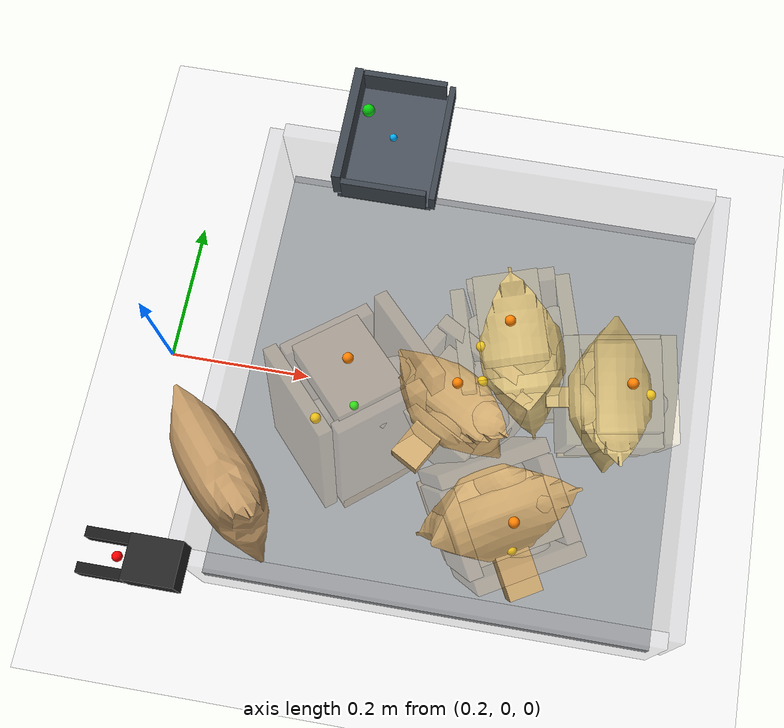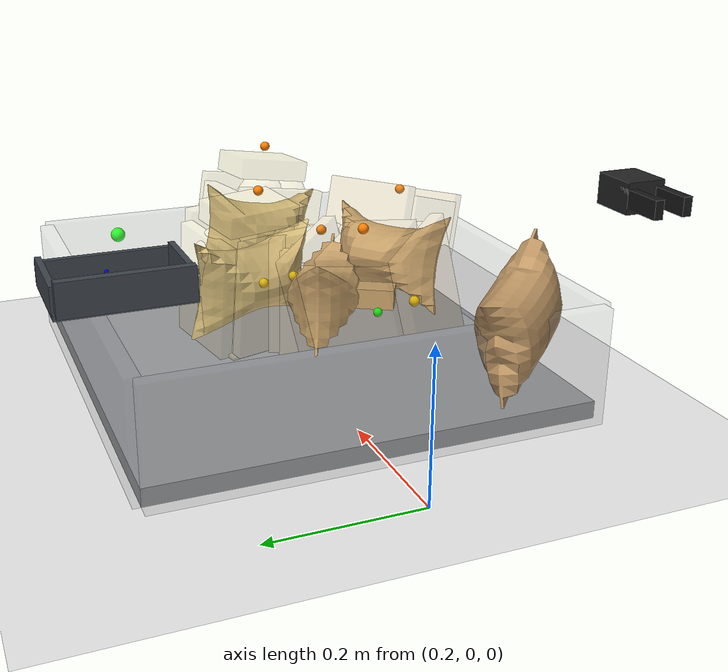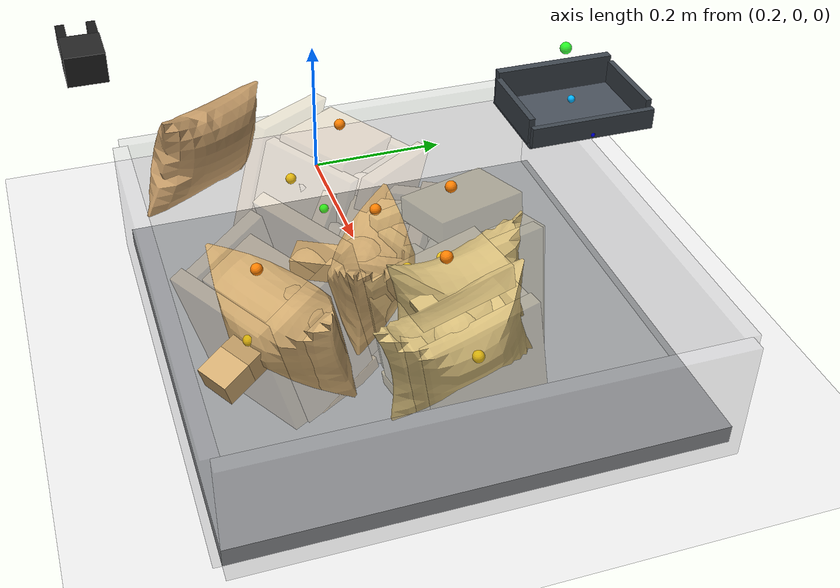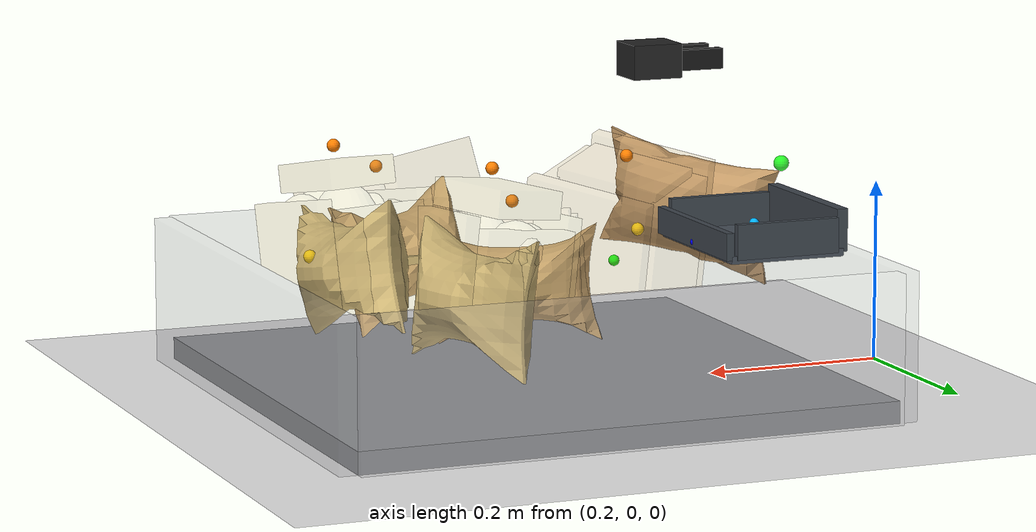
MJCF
<mujoco model="top_grasp_flat_scoop_drag_seed7">
  <compiler angle="radian" coordinate="local" inertiafromgeom="true" meshdir="D:/Michael/2025/01.Research/01.Parceldetection/16.Pybullet/bullet3-master (1)/bullet3-master/examples/pybullet/examples/DeformableTest/Sackcodex2/object"/>
  <option timestep="0.002" gravity="0 0 -9.81" integrator="implicitfast" iterations="100" tolerance="1e-8"/>
  <size memory="768M" nconmax="12000"/>

  <visual>
    <global azimuth="128" elevation="-20"/>
    <headlight ambient="0.34 0.34 0.34" diffuse="0.78 0.78 0.78" specular="0.15 0.15 0.15"/>
    <rgba haze="0.11 0.13 0.18 1"/>
  </visual>

  <default>
    <geom condim="4" friction="1.15 0.03 0.01" margin="0.003" solimp="0.93 0.98 0.003" solref="0.012 1"/>
    <joint damping="1.2" armature="0.002"/>
    <position kp="2500" forcelimited="true" forcerange="-420 420"/>
    <motor ctrllimited="true"/>
  </default>

  <asset>
    <mesh name="sack_0_visual_mesh" file="sack3.obj" scale="0.0733 0.0733 0.0769"/>
    <mesh name="sack_1_visual_mesh" file="sack10.obj" scale="0.0653 0.0653 0.0664"/>
    <mesh name="sack_2_visual_mesh" file="sack7.obj" scale="0.0714 0.0714 0.0782"/>
    <mesh name="sack_3_visual_mesh" file="sack10.obj" scale="0.0725 0.0725 0.0756"/>
    <mesh name="sack_4_visual_mesh" file="sack9.obj" scale="0.0682 0.0682 0.0726"/>
  </asset>

  <worldbody>
    <light name="key" pos="0.85 0.15 1.8" dir="-0.2 -0.1 -1" directional="true"/>
    <geom name="floor" type="plane" size="2 2 0.1" rgba="0.93 0.93 0.93 1"/>
    <geom name="work_pad" type="box" pos="0.62 0 0.012" size="0.30 0.30 0.012" rgba="0.60 0.61 0.62 1" friction="1.4 0.05 0.01"/>
    <geom name="corral_front" type="box" pos="0.93 0.00 0.08" size="0.010 0.30 0.08" rgba="0.55 0.55 0.58 0.22" friction="1.0 0.03 0.01"/>
    <geom name="corral_back" type="box" pos="0.31 0.00 0.08" size="0.010 0.30 0.08" rgba="0.55 0.55 0.58 0.18" friction="1.0 0.03 0.01"/>
    <geom name="corral_left" type="box" pos="0.62 0.30 0.08" size="0.30 0.010 0.08" rgba="0.55 0.55 0.58 0.14" friction="1.0 0.03 0.01"/>
    <geom name="corral_right" type="box" pos="0.62 -0.30 0.08" size="0.30 0.010 0.08" rgba="0.55 0.55 0.58 0.14" friction="1.0 0.03 0.01"/>
    <camera name="overview" pos="1.22 0.00 0.92" xyaxes="0 1 0 -0.46 0 0.88"/>

    <body name="gripper_mocap" mocap="true" pos="0.36 -0.33 0.30" quat="0.707107 0 -0.707107 0"/>
    <body name="scoop_mocap" mocap="true" pos="0.42 0.28 0.20" quat="1 0 0 0"/>

    <body name="gripper_tool" pos="0.36 -0.33 0.30" quat="0.707107 0 -0.707107 0">
      <freejoint name="gripper_tool_free"/>
      <inertial pos="0 0 0.04" mass="0.08" diaginertia="0.0002 0.0002 0.0002"/>
      <geom name="gripper_palm" type="box" pos="0 0 0.030" size="0.020 0.026 0.030" rgba="0.14 0.14 0.14 1"/>
      <body name="left_finger_body" pos="0 0 0.072">
        <joint name="left_finger_slide" type="slide" axis="0 1 0" limited="true" range="0.010 0.040" damping="12"/>
        <geom name="left_finger_geom" type="box" pos="0 0.020 0" size="0.012 0.006 0.040" rgba="0.10 0.10 0.10 1" friction="2.2 0.05 0.01"/>
      </body>
      <body name="right_finger_body" pos="0 0 0.072">
        <joint name="right_finger_slide" type="slide" axis="0 -1 0" limited="true" range="0.010 0.040" damping="12"/>
        <geom name="right_finger_geom" type="box" pos="0 -0.020 0" size="0.012 0.006 0.040" rgba="0.10 0.10 0.10 1" friction="2.2 0.05 0.01"/>
      </body>
      <site name="gripper_pinch_site" pos="0 0 0.074" size="0.006" rgba="1 0 0 1"/>
    </body>

    <body name="scoop_tool" pos="0.42 0.28 0.20" quat="1 0 0 0">
      <freejoint name="scoop_tool_free"/>
      <inertial pos="0 0 0.02" mass="0.10" diaginertia="0.0003 0.0003 0.0003"/>
      <geom name="scoop_plate" type="box" pos="0.062 0 0" size="0.062 0.085 0.004" rgba="0.28 0.31 0.35 1" friction="1.7 0.05 0.01"/>
      <geom name="scoop_lip" type="box" pos="0.126 0 0.014" size="0.004 0.085 0.014" rgba="0.24 0.27 0.30 1" friction="1.7 0.05 0.01"/>
      <geom name="scoop_left_rail" type="box" pos="0.062 0.082 0.018" size="0.056 0.004 0.018" rgba="0.24 0.27 0.30 1"/>
      <geom name="scoop_right_rail" type="box" pos="0.062 -0.082 0.018" size="0.056 0.004 0.018" rgba="0.24 0.27 0.30 1"/>
      <geom name="scoop_backstop" type="box" pos="0.000 0 0.022" size="0.006 0.082 0.022" rgba="0.24 0.27 0.30 1"/>
      <site name="scoop_tip_site" pos="0.126 0 0.005" size="0.005" rgba="0 0 1 1"/>
      <site name="scoop_center_site" pos="0.060 0 0.020" size="0.005" rgba="0 0.7 1 1"/>
      <site name="score_overlay_site" pos="0.030 0 0.080" size="0.008" rgba="0 1 0 0.8"/>
    </body>

    <body name="sack_0" pos="0.4878 -0.0647 0.1211" euler="-0.2349 0.0038 -0.8439">
      <freejoint name="sack_0_free"/>

      <geom name="sack_0_visual" type="mesh" mesh="sack_0_visual_mesh" rgba="0.760 0.600 0.400 0.92" contype="0" conaffinity="0"/>
      <site name="sack_0_center_site" pos="0 0 0.000" size="0.006" rgba="0 1 0 1"/>
      <site name="sack_0_top_site" pos="0 -0.0060 0.1222" size="0.007" rgba="1 0.5 0 1"/>
      <site name="sack_0_side_site" pos="0.0000 -0.0566 0.018" size="0.007" rgba="1 0.8 0 1"/>

      <geom name="sack_0_core_geom" type="ellipsoid" pos="0 0 0.0059" size="0.0446 0.0348 0.0783" mass="0.9274" rgba="0.760 0.600 0.400 0.12" friction="1.0 0.03 0.01"/>
      <geom name="sack_0_core_front" type="capsule" fromto="-0.0200 0 -0.0200 0.0450 0 0.0600" size="0.0303" mass="0.2208" rgba="0.760 0.600 0.400 0.10"/>
      <geom name="sack_0_core_left" type="capsule" fromto="-0.008 0.0350 -0.010 0.018 0.0530 0.060" size="0.0241" mass="0.3975" rgba="0.760 0.600 0.400 0.10"/>
      <geom name="sack_0_core_right" type="capsule" fromto="-0.006 -0.0350 -0.008 0.020 -0.0550 0.054" size="0.0222" mass="0.3975" rgba="0.760 0.600 0.400 0.10"/>

      <body name="sack_0_bottom_skin" pos="0 0.0027 -0.1016">
        <joint name="sack_0_bottom_x" type="slide" axis="1 0 0" limited="true" range="-0.012 0.012" damping="18" stiffness="469.4"/>
        <joint name="sack_0_bottom_y" type="slide" axis="0 1 0" limited="true" range="-0.012 0.012" damping="18" stiffness="469.4"/>
        <joint name="sack_0_bottom_z" type="slide" axis="0 0 1" limited="true" range="-0.008 0.020" damping="24" stiffness="578.2"/>
        <geom name="sack_0_bottom_support" type="box" size="0.0753 0.0626 0.0100" mass="0.1766" rgba="0.760 0.600 0.400 0.34" friction="1.55 0.05 0.01"/>
      </body>

      <body name="sack_0_top_skin" pos="0.0000 -0.0060 0.0922">
        <joint name="sack_0_top_x" type="slide" axis="1 0 0" limited="true" range="-0.018 0.018" damping="12" stiffness="180.3"/>
        <joint name="sack_0_top_y" type="slide" axis="0 1 0" limited="true" range="-0.018 0.018" damping="12" stiffness="180.3"/>
        <joint name="sack_0_top_z" type="slide" axis="0 0 1" limited="true" range="-0.040 0.010" damping="14" stiffness="133.1"/>
        <geom name="sack_0_top_grip" type="box" size="0.0593 0.0466 0.0150" mass="0.1325" rgba="0.760 0.600 0.400 0.26" friction="2.2 0.05 0.01"/>
      </body>

      <body name="sack_0_left_skin" pos="0 0.0816 0.010">
        <joint name="sack_0_left_side_slide" type="slide" axis="0 -1 0" limited="true" range="-0.028 0.016" damping="16" stiffness="235.8"/>
        <geom name="sack_0_side_left" type="box" size="0.0713 0.0090 0.0996" mass="0.1325" rgba="0.760 0.600 0.400 0.24"/>
      </body>

      <body name="sack_0_right_skin" pos="0 -0.0776 0.010">
        <joint name="sack_0_right_side_slide" type="slide" axis="0 1 0" limited="true" range="-0.028 0.016" damping="16" stiffness="218.6"/>
        <geom name="sack_0_side_right" type="box" size="0.0713 0.0090 0.0996" mass="0.1325" rgba="0.760 0.600 0.400 0.24"/>
      </body>

      <body name="sack_0_front_skin" pos="0.0653 0 0.000">
        <joint name="sack_0_front_slide" type="slide" axis="-1 0 0" limited="true" range="-0.022 0.012" damping="15" stiffness="224.7"/>
        <geom name="sack_0_front_panel" type="box" size="0.0090 0.0626 0.0976" mass="0.1104" rgba="0.760 0.600 0.400 0.22"/>
      </body>

      <body name="sack_0_back_skin" pos="-0.0653 0 0.000">
        <joint name="sack_0_back_slide" type="slide" axis="1 0 0" limited="true" range="-0.022 0.012" damping="15" stiffness="207.5"/>
        <geom name="sack_0_back_panel" type="box" size="0.0090 0.0626 0.0976" mass="0.1104" rgba="0.760 0.600 0.400 0.22"/>
      </body>

      <body name="sack_0_local_patch" pos="0.0000 -0.0270 0.0369">
        <joint name="sack_0_bulge_y" type="slide" axis="0 1 0" limited="true" range="-0.020 0.020" damping="8" stiffness="93.7"/>
        <joint name="sack_0_bulge_z" type="slide" axis="0 0 1" limited="true" range="-0.014 0.028" damping="8" stiffness="95.3"/>
        <geom name="sack_0_compliant_patch" type="ellipsoid" size="0.0201 0.0163 0.0261" mass="0.0883" rgba="0.760 0.600 0.400 0.28"/>
      </body>
    </body>

    <body name="sack_1" pos="0.6130 -0.0383 0.1090" euler="0.0347 0.0409 -0.5081">
      <freejoint name="sack_1_free"/>

      <geom name="sack_1_visual" type="mesh" mesh="sack_1_visual_mesh" rgba="0.820 0.670 0.440 0.92" contype="0" conaffinity="0"/>
      <site name="sack_1_center_site" pos="0 0 0.000" size="0.006" rgba="0 1 0 1"/>
      <site name="sack_1_top_site" pos="0 0.0060 0.0917" size="0.007" rgba="1 0.5 0 1"/>
      <site name="sack_1_side_site" pos="0.0140 0.0468 0.018" size="0.007" rgba="1 0.8 0 1"/>

      <geom name="sack_1_core_geom" type="ellipsoid" pos="0 0 0.0056" size="0.0448 0.0345 0.0662" mass="0.6399" rgba="0.820 0.670 0.440 0.12" friction="1.0 0.03 0.01"/>
      <geom name="sack_1_core_front" type="capsule" fromto="-0.0060 0 -0.0200 0.0590 0 0.0600" size="0.0292" mass="0.1524" rgba="0.820 0.670 0.440 0.10"/>
      <geom name="sack_1_core_left" type="capsule" fromto="-0.008 0.0230 -0.010 0.018 0.0410 0.060" size="0.0240" mass="0.2742" rgba="0.820 0.670 0.440 0.10"/>
      <geom name="sack_1_core_right" type="capsule" fromto="-0.006 -0.0230 -0.008 0.020 -0.0430 0.054" size="0.0220" mass="0.2742" rgba="0.820 0.670 0.440 0.10"/>

      <body name="sack_1_bottom_skin" pos="0 -0.0023 -0.0816">
        <joint name="sack_1_bottom_x" type="slide" axis="1 0 0" limited="true" range="-0.012 0.012" damping="18" stiffness="435.9"/>
        <joint name="sack_1_bottom_y" type="slide" axis="0 1 0" limited="true" range="-0.012 0.012" damping="18" stiffness="435.9"/>
        <joint name="sack_1_bottom_z" type="slide" axis="0 0 1" limited="true" range="-0.008 0.020" damping="24" stiffness="537.2"/>
        <geom name="sack_1_bottom_support" type="box" size="0.0722 0.0528 0.0100" mass="0.1219" rgba="0.820 0.670 0.440 0.34" friction="1.55 0.05 0.01"/>
      </body>

      <body name="sack_1_top_skin" pos="0.0140 0.0060 0.0617">
        <joint name="sack_1_top_x" type="slide" axis="1 0 0" limited="true" range="-0.018 0.018" damping="12" stiffness="167.3"/>
        <joint name="sack_1_top_y" type="slide" axis="0 1 0" limited="true" range="-0.018 0.018" damping="12" stiffness="167.3"/>
        <joint name="sack_1_top_z" type="slide" axis="0 0 1" limited="true" range="-0.040 0.010" damping="14" stiffness="122.0"/>
        <geom name="sack_1_top_grip" type="box" size="0.0562 0.0368 0.0150" mass="0.0914" rgba="0.820 0.670 0.440 0.26" friction="2.2 0.05 0.01"/>
      </body>

      <body name="sack_1_left_skin" pos="0 0.0598 0.010">
        <joint name="sack_1_left_side_slide" type="slide" axis="0 -1 0" limited="true" range="-0.028 0.016" damping="16" stiffness="212.6"/>
        <geom name="sack_1_side_left" type="box" size="0.0682 0.0090 0.0796" mass="0.0914" rgba="0.820 0.670 0.440 0.24"/>
      </body>

      <body name="sack_1_right_skin" pos="0 -0.0558 0.010">
        <joint name="sack_1_right_side_slide" type="slide" axis="0 1 0" limited="true" range="-0.028 0.016" damping="16" stiffness="197.3"/>
        <geom name="sack_1_side_right" type="box" size="0.0682 0.0090 0.0796" mass="0.0914" rgba="0.820 0.670 0.440 0.24"/>
      </body>

      <body name="sack_1_front_skin" pos="0.0762 0 0.000">
        <joint name="sack_1_front_slide" type="slide" axis="-1 0 0" limited="true" range="-0.022 0.012" damping="15" stiffness="207.9"/>
        <geom name="sack_1_front_panel" type="box" size="0.0090 0.0528 0.0776" mass="0.0762" rgba="0.820 0.670 0.440 0.22"/>
      </body>

      <body name="sack_1_back_skin" pos="-0.0622 0 0.000">
        <joint name="sack_1_back_slide" type="slide" axis="1 0 0" limited="true" range="-0.022 0.012" damping="15" stiffness="192.6"/>
        <geom name="sack_1_back_panel" type="box" size="0.0090 0.0528 0.0776" mass="0.0762" rgba="0.820 0.670 0.440 0.22"/>
      </body>

      <body name="sack_1_local_patch" pos="0.0084 0.0150 0.0480">
        <joint name="sack_1_bulge_y" type="slide" axis="0 1 0" limited="true" range="-0.020 0.020" damping="8" stiffness="116.1"/>
        <joint name="sack_1_bulge_z" type="slide" axis="0 0 1" limited="true" range="-0.014 0.028" damping="8" stiffness="112.1"/>
        <geom name="sack_1_compliant_patch" type="ellipsoid" size="0.0200 0.0161 0.0263" mass="0.0609" rgba="0.820 0.670 0.440 0.28"/>
      </body>
    </body>

    <body name="sack_2" pos="0.6943 0.0443 0.1140" euler="0.0345 -0.1187 1.8496">
      <freejoint name="sack_2_free"/>

      <geom name="sack_2_visual" type="mesh" mesh="sack_2_visual_mesh" rgba="0.840 0.740 0.480 0.92" contype="0" conaffinity="0"/>
      <site name="sack_2_center_site" pos="0 0 0.000" size="0.006" rgba="0 1 0 1"/>
      <site name="sack_2_top_site" pos="0 0.0060 0.1391" size="0.007" rgba="1 0.5 0 1"/>
      <site name="sack_2_side_site" pos="0.0140 0.0512 0.018" size="0.007" rgba="1 0.8 0 1"/>

      <geom name="sack_2_core_geom" type="ellipsoid" pos="0 0 0.0059" size="0.0508 0.0429 0.0908" mass="1.0076" rgba="0.840 0.740 0.480 0.12" friction="1.0 0.03 0.01"/>
      <geom name="sack_2_core_front" type="capsule" fromto="-0.0060 0 -0.0200 0.0590 0 0.0600" size="0.0318" mass="0.2399" rgba="0.840 0.740 0.480 0.10"/>
      <geom name="sack_2_core_left" type="capsule" fromto="-0.008 0.0288 -0.010 0.018 0.0468 0.060" size="0.0241" mass="0.4318" rgba="0.840 0.740 0.480 0.10"/>
      <geom name="sack_2_core_right" type="capsule" fromto="-0.006 -0.0288 -0.008 0.020 -0.0488 0.054" size="0.0221" mass="0.4318" rgba="0.840 0.740 0.480 0.10"/>

      <body name="sack_2_bottom_skin" pos="0 0.0139 -0.0879">
        <joint name="sack_2_bottom_x" type="slide" axis="1 0 0" limited="true" range="-0.012 0.012" damping="18" stiffness="514.2"/>
        <joint name="sack_2_bottom_y" type="slide" axis="0 1 0" limited="true" range="-0.012 0.012" damping="18" stiffness="514.2"/>
        <joint name="sack_2_bottom_z" type="slide" axis="0 0 1" limited="true" range="-0.008 0.020" damping="24" stiffness="633.0"/>
        <geom name="sack_2_bottom_support" type="box" size="0.0726 0.0572 0.0100" mass="0.1919" rgba="0.840 0.740 0.480 0.34" friction="1.55 0.05 0.01"/>
      </body>

      <body name="sack_2_top_skin" pos="0.0140 0.0060 0.1091">
        <joint name="sack_2_top_x" type="slide" axis="1 0 0" limited="true" range="-0.018 0.018" damping="12" stiffness="197.8"/>
        <joint name="sack_2_top_y" type="slide" axis="0 1 0" limited="true" range="-0.018 0.018" damping="12" stiffness="197.8"/>
        <joint name="sack_2_top_z" type="slide" axis="0 0 1" limited="true" range="-0.040 0.010" damping="14" stiffness="148.1"/>
        <geom name="sack_2_top_grip" type="box" size="0.0566 0.0412 0.0150" mass="0.1439" rgba="0.840 0.740 0.480 0.26" friction="2.2 0.05 0.01"/>
      </body>

      <body name="sack_2_left_skin" pos="0 0.0699 0.010">
        <joint name="sack_2_left_side_slide" type="slide" axis="0 -1 0" limited="true" range="-0.028 0.016" damping="16" stiffness="266.0"/>
        <geom name="sack_2_side_left" type="box" size="0.0686 0.0090 0.0859" mass="0.1439" rgba="0.840 0.740 0.480 0.24"/>
      </body>

      <body name="sack_2_right_skin" pos="0 -0.0659 0.010">
        <joint name="sack_2_right_side_slide" type="slide" axis="0 1 0" limited="true" range="-0.028 0.016" damping="16" stiffness="246.3"/>
        <geom name="sack_2_side_right" type="box" size="0.0686 0.0090 0.0859" mass="0.1439" rgba="0.840 0.740 0.480 0.24"/>
      </body>

      <body name="sack_2_front_skin" pos="0.0766 0 0.000">
        <joint name="sack_2_front_slide" type="slide" axis="-1 0 0" limited="true" range="-0.022 0.012" damping="15" stiffness="247.1"/>
        <geom name="sack_2_front_panel" type="box" size="0.0090 0.0572 0.0839" mass="0.1199" rgba="0.840 0.740 0.480 0.22"/>
      </body>

      <body name="sack_2_back_skin" pos="-0.0626 0 0.000">
        <joint name="sack_2_back_slide" type="slide" axis="1 0 0" limited="true" range="-0.022 0.012" damping="15" stiffness="227.4"/>
        <geom name="sack_2_back_panel" type="box" size="0.0090 0.0572 0.0839" mass="0.1199" rgba="0.840 0.740 0.480 0.22"/>
      </body>

      <body name="sack_2_local_patch" pos="0.0084 0.0208 0.0219">
        <joint name="sack_2_bulge_y" type="slide" axis="0 1 0" limited="true" range="-0.020 0.020" damping="8" stiffness="63.8"/>
        <joint name="sack_2_bulge_z" type="slide" axis="0 0 1" limited="true" range="-0.014 0.028" damping="8" stiffness="72.9"/>
        <geom name="sack_2_compliant_patch" type="ellipsoid" size="0.0201 0.0162 0.0260" mass="0.0960" rgba="0.840 0.740 0.480 0.28"/>
      </body>
    </body>

    <body name="sack_3" pos="0.6931 -0.1727 0.1228" euler="0.2412 0.1844 0.5020">
      <freejoint name="sack_3_free"/>

      <geom name="sack_3_visual" type="mesh" mesh="sack_3_visual_mesh" rgba="0.820 0.670 0.440 0.92" contype="0" conaffinity="0"/>
      <site name="sack_3_center_site" pos="0 0 0.000" size="0.006" rgba="0 1 0 1"/>
      <site name="sack_3_top_site" pos="0 -0.0060 0.1026" size="0.007" rgba="1 0.5 0 1"/>
      <site name="sack_3_side_site" pos="0.0000 -0.0491 0.018" size="0.007" rgba="1 0.8 0 1"/>

      <geom name="sack_3_core_geom" type="ellipsoid" pos="0 0 0.0057" size="0.0454 0.0355 0.0677" mass="0.6597" rgba="0.820 0.670 0.440 0.12" friction="1.0 0.03 0.01"/>
      <geom name="sack_3_core_front" type="capsule" fromto="-0.0200 0 -0.0200 0.0450 0 0.0600" size="0.0301" mass="0.1571" rgba="0.820 0.670 0.440 0.10"/>
      <geom name="sack_3_core_left" type="capsule" fromto="-0.008 0.0286 -0.010 0.018 0.0466 0.060" size="0.0241" mass="0.2827" rgba="0.820 0.670 0.440 0.10"/>
      <geom name="sack_3_core_right" type="capsule" fromto="-0.006 -0.0286 -0.008 0.020 -0.0486 0.054" size="0.0221" mass="0.2827" rgba="0.820 0.670 0.440 0.10"/>

      <body name="sack_3_bottom_skin" pos="0 0.0054 -0.0998">
        <joint name="sack_3_bottom_x" type="slide" axis="1 0 0" limited="true" range="-0.012 0.012" damping="18" stiffness="461.8"/>
        <joint name="sack_3_bottom_y" type="slide" axis="0 1 0" limited="true" range="-0.012 0.012" damping="18" stiffness="461.8"/>
        <joint name="sack_3_bottom_z" type="slide" axis="0 0 1" limited="true" range="-0.008 0.020" damping="24" stiffness="568.8"/>
        <geom name="sack_3_bottom_support" type="box" size="0.0730 0.0551 0.0100" mass="0.1257" rgba="0.820 0.670 0.440 0.34" friction="1.55 0.05 0.01"/>
      </body>

      <body name="sack_3_top_skin" pos="0.0000 -0.0060 0.0726">
        <joint name="sack_3_top_x" type="slide" axis="1 0 0" limited="true" range="-0.018 0.018" damping="12" stiffness="177.3"/>
        <joint name="sack_3_top_y" type="slide" axis="0 1 0" limited="true" range="-0.018 0.018" damping="12" stiffness="177.3"/>
        <joint name="sack_3_top_z" type="slide" axis="0 0 1" limited="true" range="-0.040 0.010" damping="14" stiffness="130.6"/>
        <geom name="sack_3_top_grip" type="box" size="0.0570 0.0391 0.0150" mass="0.0942" rgba="0.820 0.670 0.440 0.26" friction="2.2 0.05 0.01"/>
      </body>

      <body name="sack_3_left_skin" pos="0 0.0677 0.010">
        <joint name="sack_3_left_side_slide" type="slide" axis="0 -1 0" limited="true" range="-0.028 0.016" damping="16" stiffness="230.0"/>
        <geom name="sack_3_side_left" type="box" size="0.0690 0.0090 0.0978" mass="0.0942" rgba="0.820 0.670 0.440 0.24"/>
      </body>

      <body name="sack_3_right_skin" pos="0 -0.0637 0.010">
        <joint name="sack_3_right_side_slide" type="slide" axis="0 1 0" limited="true" range="-0.028 0.016" damping="16" stiffness="213.3"/>
        <geom name="sack_3_side_right" type="box" size="0.0690 0.0090 0.0978" mass="0.0942" rgba="0.820 0.670 0.440 0.24"/>
      </body>

      <body name="sack_3_front_skin" pos="0.0630 0 0.000">
        <joint name="sack_3_front_slide" type="slide" axis="-1 0 0" limited="true" range="-0.022 0.012" damping="15" stiffness="220.9"/>
        <geom name="sack_3_front_panel" type="box" size="0.0090 0.0551 0.0958" mass="0.0785" rgba="0.820 0.670 0.440 0.22"/>
      </body>

      <body name="sack_3_back_skin" pos="-0.0630 0 0.000">
        <joint name="sack_3_back_slide" type="slide" axis="1 0 0" limited="true" range="-0.022 0.012" damping="15" stiffness="204.1"/>
        <geom name="sack_3_back_panel" type="box" size="0.0090 0.0551 0.0958" mass="0.0785" rgba="0.820 0.670 0.440 0.22"/>
      </body>

      <body name="sack_3_local_patch" pos="0.0000 -0.0206 0.0394">
        <joint name="sack_3_bulge_y" type="slide" axis="0 1 0" limited="true" range="-0.020 0.020" damping="8" stiffness="98.8"/>
        <joint name="sack_3_bulge_z" type="slide" axis="0 0 1" limited="true" range="-0.014 0.028" damping="8" stiffness="99.1"/>
        <geom name="sack_3_compliant_patch" type="ellipsoid" size="0.0201 0.0162 0.0263" mass="0.0628" rgba="0.820 0.670 0.440 0.28"/>
      </body>
    </body>

    <body name="sack_4" pos="0.8150 -0.0043 0.1470" euler="0.1699 0.0463 -1.3959">
      <freejoint name="sack_4_free"/>

      <geom name="sack_4_visual" type="mesh" mesh="sack_4_visual_mesh" rgba="0.840 0.740 0.480 0.92" contype="0" conaffinity="0"/>
      <site name="sack_4_center_site" pos="0 0 0.000" size="0.006" rgba="0 1 0 1"/>
      <site name="sack_4_top_site" pos="0 0.0060 0.1309" size="0.007" rgba="1 0.5 0 1"/>
      <site name="sack_4_side_site" pos="0.0000 0.0485 0.018" size="0.007" rgba="1 0.8 0 1"/>

      <geom name="sack_4_core_geom" type="ellipsoid" pos="0 0 0.0059" size="0.0500 0.0416 0.0885" mass="1.0882" rgba="0.840 0.740 0.480 0.12" friction="1.0 0.03 0.01"/>
      <geom name="sack_4_core_front" type="capsule" fromto="-0.0200 0 -0.0200 0.0450 0 0.0600" size="0.0308" mass="0.2591" rgba="0.840 0.740 0.480 0.10"/>
      <geom name="sack_4_core_left" type="capsule" fromto="-0.008 0.0238 -0.010 0.018 0.0418 0.060" size="0.0240" mass="0.4664" rgba="0.840 0.740 0.480 0.10"/>
      <geom name="sack_4_core_right" type="capsule" fromto="-0.006 -0.0238 -0.008 0.020 -0.0438 0.054" size="0.0220" mass="0.4664" rgba="0.840 0.740 0.480 0.10"/>

      <body name="sack_4_bottom_skin" pos="0 -0.0076 -0.0693">
        <joint name="sack_4_bottom_x" type="slide" axis="1 0 0" limited="true" range="-0.012 0.012" damping="18" stiffness="483.7"/>
        <joint name="sack_4_bottom_y" type="slide" axis="0 1 0" limited="true" range="-0.012 0.012" damping="18" stiffness="483.7"/>
        <joint name="sack_4_bottom_z" type="slide" axis="0 0 1" limited="true" range="-0.008 0.020" damping="24" stiffness="595.7"/>
        <geom name="sack_4_bottom_support" type="box" size="0.0717 0.0545 0.0100" mass="0.2073" rgba="0.840 0.740 0.480 0.34" friction="1.55 0.05 0.01"/>
      </body>

      <body name="sack_4_top_skin" pos="0.0000 0.0060 0.1009">
        <joint name="sack_4_top_x" type="slide" axis="1 0 0" limited="true" range="-0.018 0.018" damping="12" stiffness="185.9"/>
        <joint name="sack_4_top_y" type="slide" axis="0 1 0" limited="true" range="-0.018 0.018" damping="12" stiffness="185.9"/>
        <joint name="sack_4_top_z" type="slide" axis="0 0 1" limited="true" range="-0.040 0.010" damping="14" stiffness="137.9"/>
        <geom name="sack_4_top_grip" type="box" size="0.0557 0.0385 0.0150" mass="0.1555" rgba="0.840 0.740 0.480 0.26" friction="2.2 0.05 0.01"/>
      </body>

      <body name="sack_4_left_skin" pos="0 0.0623 0.010">
        <joint name="sack_4_left_side_slide" type="slide" axis="0 -1 0" limited="true" range="-0.028 0.016" damping="16" stiffness="245.6"/>
        <geom name="sack_4_side_left" type="box" size="0.0677 0.0090 0.0673" mass="0.1555" rgba="0.840 0.740 0.480 0.24"/>
      </body>

      <body name="sack_4_right_skin" pos="0 -0.0583 0.010">
        <joint name="sack_4_right_side_slide" type="slide" axis="0 1 0" limited="true" range="-0.028 0.016" damping="16" stiffness="227.6"/>
        <geom name="sack_4_side_right" type="box" size="0.0677 0.0090 0.0673" mass="0.1555" rgba="0.840 0.740 0.480 0.24"/>
      </body>

      <body name="sack_4_front_skin" pos="0.0617 0 0.000">
        <joint name="sack_4_front_slide" type="slide" axis="-1 0 0" limited="true" range="-0.022 0.012" damping="15" stiffness="231.9"/>
        <geom name="sack_4_front_panel" type="box" size="0.0090 0.0545 0.0653" mass="0.1295" rgba="0.840 0.740 0.480 0.22"/>
      </body>

      <body name="sack_4_back_skin" pos="-0.0617 0 0.000">
        <joint name="sack_4_back_slide" type="slide" axis="1 0 0" limited="true" range="-0.022 0.012" damping="15" stiffness="213.9"/>
        <geom name="sack_4_back_panel" type="box" size="0.0090 0.0545 0.0653" mass="0.1295" rgba="0.840 0.740 0.480 0.22"/>
      </body>

      <body name="sack_4_local_patch" pos="0.0000 0.0158 0.0321">
        <joint name="sack_4_bulge_y" type="slide" axis="0 1 0" limited="true" range="-0.020 0.020" damping="8" stiffness="84.2"/>
        <joint name="sack_4_bulge_z" type="slide" axis="0 0 1" limited="true" range="-0.014 0.028" damping="8" stiffness="88.1"/>
        <geom name="sack_4_compliant_patch" type="ellipsoid" size="0.0200 0.0161 0.0261" mass="0.1036" rgba="0.840 0.740 0.480 0.28"/>
      </body>
    </body>
  </worldbody>

  <equality>
    <weld name="gripper_follow" body1="gripper_mocap" body2="gripper_tool" torquescale="400" solref="0.002 1" solimp="0.99 0.999 0.0001"/>
    <weld name="scoop_follow" body1="scoop_mocap" body2="scoop_tool" torquescale="500" solref="0.002 1" solimp="0.99 0.999 0.0001"/>
  </equality>

  <actuator>
    <position name="left_finger_act" joint="left_finger_slide" ctrlrange="0.010 0.040" kp="2800" forcerange="-220 220"/>
    <position name="right_finger_act" joint="right_finger_slide" ctrlrange="0.010 0.040" kp="2800" forcerange="-220 220"/>
  </actuator>

  <contact>
    <exclude body1="sack_0_top_skin" body2="sack_0_left_skin"/>
    <exclude body1="sack_0_top_skin" body2="sack_0_right_skin"/>
    <exclude body1="sack_1_top_skin" body2="sack_1_left_skin"/>
    <exclude body1="sack_1_top_skin" body2="sack_1_right_skin"/>
    <exclude body1="sack_2_top_skin" body2="sack_2_left_skin"/>
    <exclude body1="sack_2_top_skin" body2="sack_2_right_skin"/>
    <exclude body1="sack_3_top_skin" body2="sack_3_left_skin"/>
    <exclude body1="sack_3_top_skin" body2="sack_3_right_skin"/>
    <exclude body1="sack_4_top_skin" body2="sack_4_left_skin"/>
    <exclude body1="sack_4_top_skin" body2="sack_4_right_skin"/>
  </contact>
</mujoco>
